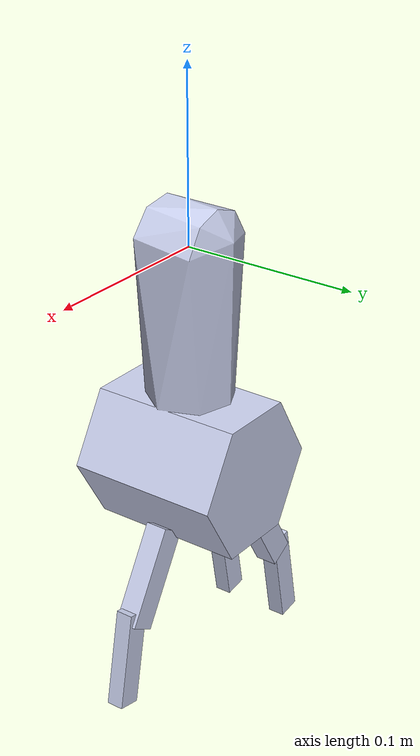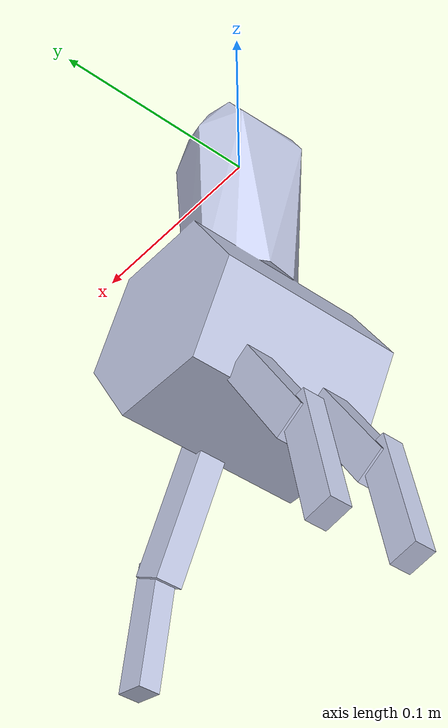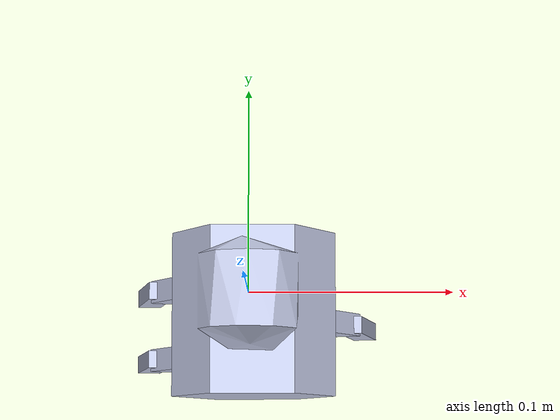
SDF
<?xml version='1.0'?>
<sdf version='1.6'>
  <model name='TEO_leftLacqueyFetch'>
		<!-- Base: FrontalWrist (muñeca + palma) -->
    <link name='FrontalLeftWrist_link'>
      <pose>0 0 0 0 -0 0</pose>
      <inertial>
        <pose>-0.000050 -0.000055 -0.107329 0 -0 0</pose>
        <mass>1.078</mass>
        <inertia>
          <ixx>0.0033558744</ixx>
          <ixy>-0.000000324</ixy>
          <ixz>0.0000088739</ixz>
          <iyy>0.0031520281</iyy>
          <iyz>0.0000036082</iyz>
          <izz>0.0010088020</izz>
        </inertia>
      </inertial>
      <visual name='FrontalLeftWrist_visual'>
        <geometry>
          <mesh>
            <scale>0.001 0.001 0.001</scale>
            <uri>model://teo/meshes/visual/lacqueyFetch/FrontalWrist.dae</uri>
          </mesh>
        </geometry>
        <material>
          <ambient>0.792157 0.819608 0.933333 1</ambient>
          <diffuse>0.792157 0.819608 0.933333 1</diffuse>
          <specular>0.633726 0.655686 0.746667 1</specular>
          <emissive>0 0 0 1</emissive>
        </material>
      </visual>
      <collision name='FrontalLeftWrist_collision'>
				<pose>0.0 0.0 -0.0 0.0 0.0 0.0</pose>
        <geometry>
          <mesh>
            <uri>model://teo/meshes/collision/lacqueyFetch/FrontalWristLow.stl</uri>
          </mesh>
        </geometry>
				<max_contacts>2</max_contacts>
				<surface>
					<contact>
						<ode>
							<kp>1000000</kp>
							<kd>100</kd>
							<max_vel>0.001</max_vel>
							<min_depth>0.001</min_depth>
						</ode>
					</contact>
					<friction>
						<ode>
							<mu>1</mu>
							<mu2>1</mu2>
							<slip1>0</slip1>
							<slip2>0</slip2>
						</ode>
					</friction>
				</surface>
      </collision>
    </link>

		<!-- Dedo pulgar (thumb): falange proximal (00) -->
		<link name='LeftThumbProximal_link'>
	  	<pose>0.027472302 0 -0.164588951 0 -0 0</pose>
      <inertial>
        <pose>0.012547 0.000009 -0.020977 0 -0 0</pose>
        <mass>0.018092</mass>
        <inertia>
          <ixx>0.0000042540336</ixx>
          <ixy>-0.000000000003</ixy>
          <ixz>0.0000016664918</ixz>
          <iyy>0.0000051152263</iyy>
          <iyz>-0.000000000012</iyz>
          <izz>0.0000014691909</izz>
        </inertia>
      </inertial>
      <visual name='LeftThumbProximal_visual'>
        <geometry>
          <mesh>
            <scale>0.001 0.001 0.001</scale>
            <uri>model://teo/meshes/visual/lacqueyFetch/PhalangeProximal.dae</uri>
          </mesh>
        </geometry>
        <material>
          <ambient>0.792157 0.819608 0.933333 1</ambient>
          <diffuse>0.792157 0.819608 0.933333 1</diffuse>
          <specular>0.633726 0.655686 0.746667 1</specular>
          <emissive>0 0 0 1</emissive>
        </material>
      </visual>
      <collision name='LeftThumbProximal_collision'>
				<pose>0.0 0.0 0.0 1.57079632679 0.0 -3.14159265359</pose>
        <geometry>
          <mesh>
            <scale>0.001 0.001 0.001</scale>
            <uri>model://teo/meshes/collision/lacqueyFetch/PhalangeProximalLow.stl</uri>
          </mesh>
        </geometry>
				<max_contacts>2</max_contacts>
				<surface>
					<contact>
						<ode>
							<kp>1000000</kp>
							<kd>100</kd>
							<max_vel>0.001</max_vel>
							<min_depth>0.001</min_depth>
						</ode>
					</contact>
					<friction>
						<ode>
							<mu>1</mu>
							<mu2>1</mu2>
							<slip1>0</slip1>
							<slip2>0</slip2>
						</ode>
					</friction>
				</surface>
      </collision>
    </link>

    <joint name='LeftThumbProximal' type='revolute'>
      <parent>TEO_leftLacqueyFetch::FrontalLeftWrist_link</parent>
      <child>TEO_leftLacqueyFetch::LeftThumbProximal_link</child>
      <axis>
        <xyz>0 -1 0</xyz>
        <limit>
          <lower>-0.523599</lower>
          <upper>0.174533</upper>
        </limit>
        <dynamics>
          <damping>0.001</damping>
          <friction>0.7</friction>
        </dynamics>
      </axis>
    </joint>

		<!-- Dedo pulgar (thumb): falange distal (00) -->
		<link name='LeftThumbDistal_link'>
			<pose>0.054472302 0 -0.211588951 0 -0 0</pose>
      <inertial>
        <pose>0.006817 0 -0.017343 0 -0 0</pose>
        <mass>0.01234</mass>
        <inertia>
          <ixx>0.000002852</ixx>
          <ixy>0.000000000</ixy>
          <ixz>0.000000239</ixz>
          <iyy>0.000003003</iyy>
          <iyz>0.00000000</iyz>
          <izz>0.000000357</izz>
        </inertia>
      </inertial>
      <visual name='LeftThumbDistal_visual'>
        <geometry>
          <mesh>
            <scale>0.001 0.001 0.001</scale>
            <uri>model://teo/meshes/visual/lacqueyFetch/PhalangeDistal.dae</uri>
          </mesh>
        </geometry>
        <material>
          <ambient>0.792157 0.819608 0.933333 1</ambient>
          <diffuse>0.792157 0.819608 0.933333 1</diffuse>
          <specular>0.633726 0.655686 0.746667 1</specular>
          <emissive>0 0 0 1</emissive>
        </material>
      </visual>
      <collision name='LeftThumbDistal_collision'>
				<pose>0.0 0.0 0.0 1.57079632679 0.0 -3.14159265359</pose>
        <geometry>
          <mesh>
            <scale>0.001 0.001 0.001</scale>
            <uri>model://teo/meshes/collision/lacqueyFetch/PhalangeDistalLow.stl</uri>
          </mesh>
        </geometry>
				<max_contacts>2</max_contacts>
				<surface>
					<contact>
						<ode>
							<kp>1000000</kp>
							<kd>100</kd>
							<max_vel>0.001</max_vel>
							<min_depth>0.001</min_depth>
						</ode>
					</contact>
					<friction>
						<ode>
							<mu>1</mu>
							<mu2>1</mu2>
							<slip1>0</slip1>
							<slip2>0</slip2>
						</ode>
					</friction>
				</surface>
      </collision>
    </link>
    <joint name='LeftThumbDistal' type='revolute'>
      <parent>TEO_leftLacqueyFetch::LeftThumbProximal_link</parent>
      <child>TEO_leftLacqueyFetch::LeftThumbDistal_link</child>
      <axis>
        <xyz>0 -1 0</xyz>
        <limit>
          <lower>-0.872665</lower>
          <upper>0.174533</upper>
        </limit>
        <dynamics>
          <damping>0.001</damping>
          <friction>0.7</friction>
        </dynamics>
      </axis>
    </joint>

		<!-- Dedo indice: falange proximal (01) -->
		<link name='ExternalLeftFingerProximal_link'>
	  	<pose>-0.02852741 0.02010339 -0.164409358 0 0 -3.14159265359</pose>
      <inertial>
        <pose>0.012547 0.000009 -0.020977 0 -0 0</pose>
        <mass>0.018092</mass>
        <inertia>
          <ixx>0.0000042540336</ixx>
          <ixy>-0.000000000003</ixy>
          <ixz>0.0000016664918</ixz>
          <iyy>0.0000051152263</iyy>
          <iyz>-0.000000000012</iyz>
          <izz>0.0000014691909</izz>
        </inertia>
      </inertial>
      <visual name='ExternalLeftFingerProximal_visual'>
        <geometry>
          <mesh>
            <scale>0.001 0.001 0.001</scale>
            <uri>model://teo/meshes/visual/lacqueyFetch/PhalangeProximal.dae</uri>
          </mesh>
        </geometry>
        <material>
          <ambient>0.792157 0.819608 0.933333 1</ambient>
          <diffuse>0.792157 0.819608 0.933333 1</diffuse>
          <specular>0.633726 0.655686 0.746667 1</specular>
          <emissive>0 0 0 1</emissive>
        </material>
      </visual>
      <collision name='ExternalLeftFingerProximal_collision'>
				<pose>0.0 0.0 0.0 1.57079632679 0.0 -3.14159265359</pose>
        <geometry>
          <mesh>
            <scale>0.001 0.001 0.001</scale>
            <uri>model://teo/meshes/collision/lacqueyFetch/PhalangeProximalLow.stl</uri>
          </mesh>
        </geometry>
				<max_contacts>2</max_contacts>
				<surface>
					<contact>
						<ode>
							<kp>1000000</kp>
							<kd>100</kd>
							<max_vel>0.001</max_vel>
							<min_depth>0.001</min_depth>
						</ode>
					</contact>
					<friction>
						<ode>
							<mu>1</mu>
							<mu2>1</mu2>
							<slip1>0</slip1>
							<slip2>0</slip2>
						</ode>
					</friction>
				</surface>
      </collision>
    </link>

    <joint name='ExternalLeftFingerProximal' type='revolute'>
      <parent>TEO_leftLacqueyFetch::FrontalLeftWrist_link</parent>
      <child>TEO_leftLacqueyFetch::ExternalLeftFingerProximal_link</child>
      <axis>
        <xyz>0 -1 0</xyz>
        <limit>
          <lower>-0.523599</lower>
          <upper>0.174533</upper>
        </limit>
        <dynamics>
          <damping>0.001</damping>
          <friction>0.7</friction>
        </dynamics>
      </axis>
    </joint>

		<!-- Dedo indice: falange distal (01) -->
		<link name='ExternalLeftFingerDistal_link'>
			<pose>-0.05552741 0.02010339 -0.211409358 0 -0 -3.14159265359</pose>
      <inertial>
        <pose>0.006817 0 -0.017343 0 -0 0</pose>
        <mass>0.01234</mass>
        <inertia>
          <ixx>0.000002852</ixx>
          <ixy>0.000000000</ixy>
          <ixz>0.000000239</ixz>
          <iyy>0.000003003</iyy>
          <iyz>0.00000000</iyz>
          <izz>0.000000357</izz>
        </inertia>
      </inertial>
      <visual name='ExternalLeftFingerDistal_visual'>
        <geometry>
          <mesh>
            <scale>0.001 0.001 0.001</scale>
            <uri>model://teo/meshes/visual/lacqueyFetch/PhalangeDistal.dae</uri>
          </mesh>
        </geometry>
        <material>
          <ambient>0.792157 0.819608 0.933333 1</ambient>
          <diffuse>0.792157 0.819608 0.933333 1</diffuse>
          <specular>0.633726 0.655686 0.746667 1</specular>
          <emissive>0 0 0 1</emissive>
        </material>
      </visual>
      <collision name='ExternalLeftFingerDistal_collision'>
				<pose>0.0 0.0 0.0 1.57079632679 0.0 -3.14159265359</pose>
        <geometry>
          <mesh>
            <scale>0.001 0.001 0.001</scale>
            <uri>model://teo/meshes/collision/lacqueyFetch/PhalangeDistalLow.stl</uri>
          </mesh>
        </geometry>
				<max_contacts>2</max_contacts>
				<surface>
					<contact>
						<ode>
							<kp>1000000</kp>
							<kd>100</kd>
							<max_vel>0.001</max_vel>
							<min_depth>0.001</min_depth>
						</ode>
					</contact>
					<friction>
						<ode>
							<mu>1</mu>
							<mu2>1</mu2>
							<slip1>0</slip1>
							<slip2>0</slip2>
						</ode>
					</friction>
				</surface>
      </collision>
    </link>
    <joint name='ExternalLeftFingerDistal' type='revolute'>
      <parent>TEO_leftLacqueyFetch::ExternalLeftFingerProximal_link</parent>
      <child>TEO_leftLacqueyFetch::ExternalLeftFingerDistal_link</child>
      <axis>
        <xyz>0 -1 0</xyz>
        <limit>
          <lower>-0.872665</lower>
          <upper>0.174533</upper>
        </limit>
        <dynamics>
          <damping>0.001</damping>
          <friction>0.7</friction>
        </dynamics>
      </axis>
    </joint>

		<!-- Dedo medio: falange proximal (02) -->
		<link name='InternalLeftFingerProximal_link'>
	  	<pose>-0.02852741 -0.02010339 -0.164409358 0 0 -3.14159265359</pose>
      <inertial>
        <pose>0.012547 0.000009 -0.020977 0 -0 0</pose>
        <mass>0.018092</mass>
        <inertia>
          <ixx>0.0000042540336</ixx>
          <ixy>-0.000000000003</ixy>
          <ixz>0.0000016664918</ixz>
          <iyy>0.0000051152263</iyy>
          <iyz>-0.000000000012</iyz>
          <izz>0.0000014691909</izz>
        </inertia>
      </inertial>
      <visual name='InternalLeftFingerProximal_visual'>
        <geometry>
          <mesh>
            <scale>0.001 0.001 0.001</scale>
            <uri>model://teo/meshes/visual/lacqueyFetch/PhalangeProximal.dae</uri>
          </mesh>
        </geometry>
        <material>
          <ambient>0.792157 0.819608 0.933333 1</ambient>
          <diffuse>0.792157 0.819608 0.933333 1</diffuse>
          <specular>0.633726 0.655686 0.746667 1</specular>
          <emissive>0 0 0 1</emissive>
        </material>
      </visual>
      <collision name='InternalLeftFingerProximal_collision'>
				<pose>0.0 0.0 0.0 1.57079632679 0.0 -3.14159265359</pose>
        <geometry>
          <mesh>
            <scale>0.001 0.001 0.001</scale>
            <uri>model://teo/meshes/collision/lacqueyFetch/PhalangeProximalLow.stl</uri>
          </mesh>
        </geometry>
				<max_contacts>2</max_contacts>
				<surface>
					<contact>
						<ode>
							<kp>1000000</kp>
							<kd>100</kd>
							<max_vel>0.001</max_vel>
							<min_depth>0.001</min_depth>
						</ode>
					</contact>
					<friction>
						<ode>
							<mu>1</mu>
							<mu2>1</mu2>
							<slip1>0</slip1>
							<slip2>0</slip2>
						</ode>
					</friction>
				</surface>
      </collision>
    </link>

    <joint name='InternalLeftFingerProximal' type='revolute'>
      <parent>TEO_leftLacqueyFetch::FrontalLeftWrist_link</parent>
      <child>TEO_leftLacqueyFetch::InternalLeftFingerProximal_link</child>
      <axis>
        <xyz>0 -1 0</xyz>
        <limit>
          <lower>-0.523599</lower>
          <upper>0.174533</upper>
        </limit>
        <dynamics>
          <damping>0.001</damping>
          <friction>0.7</friction>
        </dynamics>
      </axis>
    </joint>

		<!-- Dedo medio: falange distal (01) -->
		<link name='InternalLeftFingerDistal_link'>
			<pose>-0.05552741 -0.02010339 -0.211409358 0 -0 -3.14159265359</pose>
      <inertial>
        <pose>0.006817 0 -0.017343 0 -0 0</pose>
        <mass>0.01234</mass>
        <inertia>
          <ixx>0.000002852</ixx>
          <ixy>0.000000000</ixy>
          <ixz>0.000000239</ixz>
          <iyy>0.000003003</iyy>
          <iyz>0.00000000</iyz>
          <izz>0.000000357</izz>
        </inertia>
      </inertial>
      <visual name='InternalLeftFingerDistal_visual'>
        <geometry>
          <mesh>
            <scale>0.001 0.001 0.001</scale>
            <uri>model://teo/meshes/visual/lacqueyFetch/PhalangeDistal.dae</uri>
          </mesh>
        </geometry>
        <material>
          <ambient>0.792157 0.819608 0.933333 1</ambient>
          <diffuse>0.792157 0.819608 0.933333 1</diffuse>
          <specular>0.633726 0.655686 0.746667 1</specular>
          <emissive>0 0 0 1</emissive>
        </material>
      </visual>
      <collision name='InternalLeftFingerDistal_collision'>
				<pose>0.0 0.0 0.0 1.57079632679 0.0 -3.14159265359</pose>
        <geometry>
          <mesh>
            <scale>0.001 0.001 0.001</scale>
            <uri>model://teo/meshes/collision/lacqueyFetch/PhalangeDistalLow.stl</uri>
          </mesh>
        </geometry>
				<max_contacts>2</max_contacts>
				<surface>
					<contact>
						<ode>
							<kp>1000000</kp>
							<kd>100</kd>
							<max_vel>0.001</max_vel>
							<min_depth>0.001</min_depth>
						</ode>
					</contact>
					<friction>
						<ode>
							<mu>1</mu>
							<mu2>1</mu2>
							<slip1>0</slip1>
							<slip2>0</slip2>
						</ode>
					</friction>
				</surface>
      </collision>
    </link>
    <joint name='InternalLeftFingerDistal' type='revolute'>
      <parent>TEO_leftLacqueyFetch::InternalLeftFingerProximal_link</parent>
      <child>TEO_leftLacqueyFetch::InternalLeftFingerDistal_link</child>
      <axis>
        <xyz>0 -1 0</xyz>
        <limit>
          <lower>-0.872665</lower>
          <upper>0.174533</upper>
        </limit>
        <dynamics>
          <damping>0.001</damping>
          <friction>0.7</friction>
        </dynamics>
      </axis>
    </joint>

    <plugin name='controlboard_leftLacqueyFetch_thumb' filename='libgazebo_yarp_controlboard.so'>
      <yarpConfigurationFile>model://teo/conf/gazebo_teo_leftLacqueyFetch_thumb.ini</yarpConfigurationFile>
    </plugin>

    <plugin name='controlboard_leftLacqueyFetch_externalFinger' filename='libgazebo_yarp_controlboard.so'>
      <yarpConfigurationFile>model://teo/conf/gazebo_teo_leftLacqueyFetch_externalFinger.ini</yarpConfigurationFile>
    </plugin>

    <plugin name='controlboard_leftLacqueyFetch_internalFinger' filename='libgazebo_yarp_controlboard.so'>
      <yarpConfigurationFile>model://teo/conf/gazebo_teo_leftLacqueyFetch_internalFinger.ini</yarpConfigurationFile>
    </plugin>

  </model>
</sdf>
